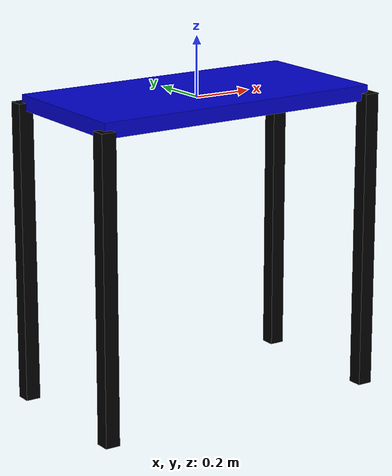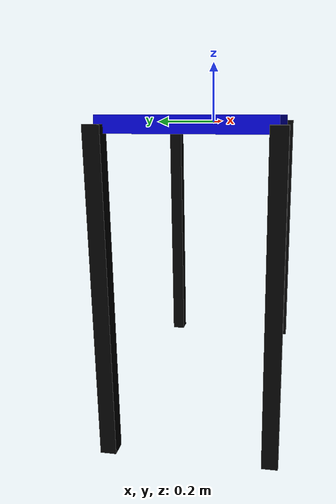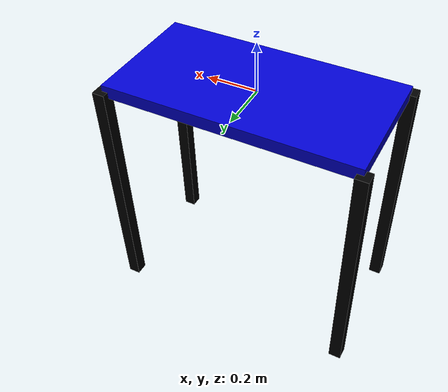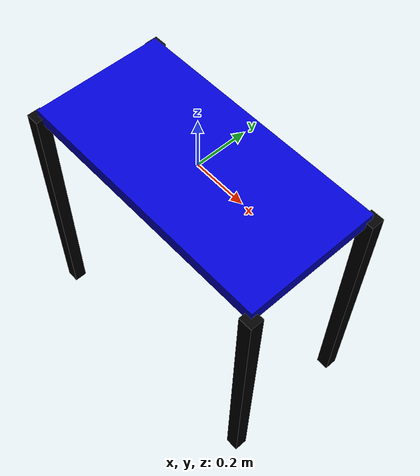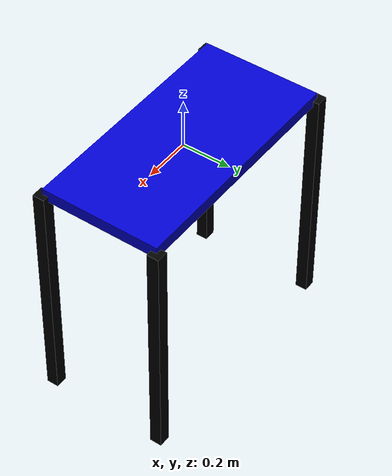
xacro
<?xml version="1.0"?>
<robot name="table_desc" xmlns:xacro="http://www.ros.org/wiki/xacro">

  <!-- ================= PROPERTIES ================= -->
  <xacro:property name="table_length" value="1.0"/>
  <xacro:property name="table_width"  value="0.5"/>
  <xacro:property name="table_thickness" value="0.05"/>

  <xacro:property name="leg_size" value="0.05"/>
  <xacro:property name="leg_height" value="1.0"/>

  <xacro:property name="table_mass" value="50"/>
  <xacro:property name="leg_mass" value="10"/>

  <!-- ================= MATERIALS ================= -->
  <material name="blue">
    <color rgba="0 0 0.8 1"/>
  </material>

  <material name="black">
    <color rgba="0 0 0 1"/>
  </material>

  <!-- ================= TABLE TOP ================= -->
  <link name="table_sup">
    <visual>
      <geometry>
        <box size="${table_length} ${table_width} ${table_thickness}"/>
      </geometry>
      <material name="blue"/>
    </visual>

    <collision>
      <geometry>
        <box size="${table_length} ${table_width} ${table_thickness}"/>
      </geometry>
    </collision>

    <inertial>
      <origin xyz="0 0 0" rpy="0 0 0"/>
      <mass value="${table_mass}"/>
      <inertia ixx="1e-3" ixy="0.0" ixz="0.0"
               iyy="1e-3" iyz="0.0" izz="1e-3"/>
    </inertial>
  </link>

  <!-- ================= LEG MACRO ================= -->
  <xacro:macro name="table_leg" params="name x y">

    <link name="${name}">
      <visual>
        <origin xyz="0 0 -${leg_height/2}" rpy="0 0 0"/>
        <geometry>
          <box size="${leg_size} ${leg_size} ${leg_height}"/>
        </geometry>
        <material name="black"/>
      </visual>

      <collision>
        <origin xyz="0 0 -${leg_height/2}" rpy="0 0 0"/>
        <geometry>
          <box size="${leg_size} ${leg_size} ${leg_height}"/>
        </geometry>
      </collision>

      <inertial>
        <origin xyz="0 0 -${leg_height/2}" rpy="0 0 0"/>
        <mass value="${leg_mass}"/>
        <inertia ixx="1e-3" ixy="0.0" ixz="0.0"
                 iyy="1e-3" iyz="0.0" izz="1e-3"/>
      </inertial>
    </link>

    <joint name="table_to_${name}" type="fixed">
      <parent link="table_sup"/>
      <child link="${name}"/>
      <origin xyz="${x} ${y} 0" rpy="0 0 0"/>
    </joint>

  </xacro:macro>

  <!-- ================= CREATE 4 LEGS ================= -->
  <xacro:table_leg name="leg_1" x="-${table_length/2}" y="-${table_width/2}"/>
  <xacro:table_leg name="leg_2" x="${table_length/2}"  y="-${table_width/2}"/>
  <xacro:table_leg name="leg_3" x="${table_length/2}"  y="${table_width/2}"/>
  <xacro:table_leg name="leg_4" x="-${table_length/2}" y="${table_width/2}"/>

</robot>
